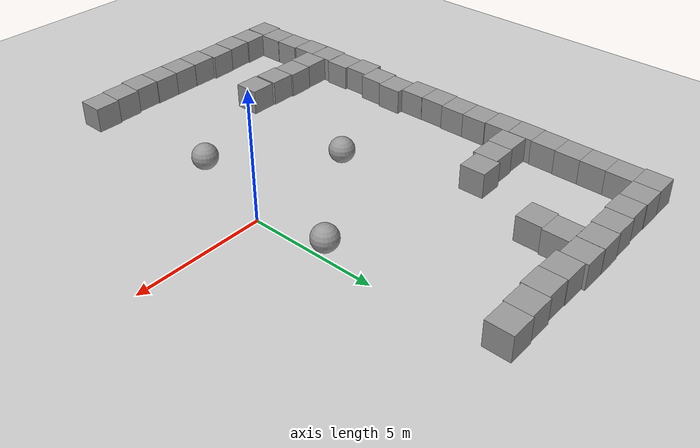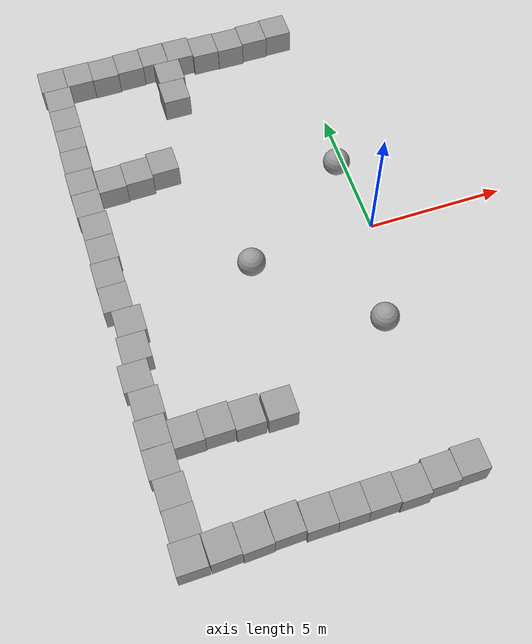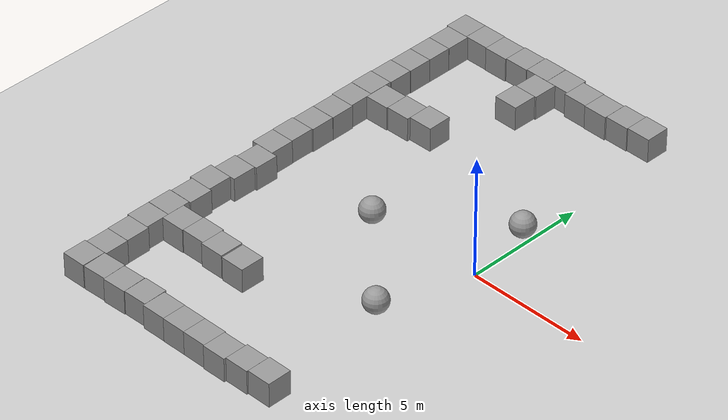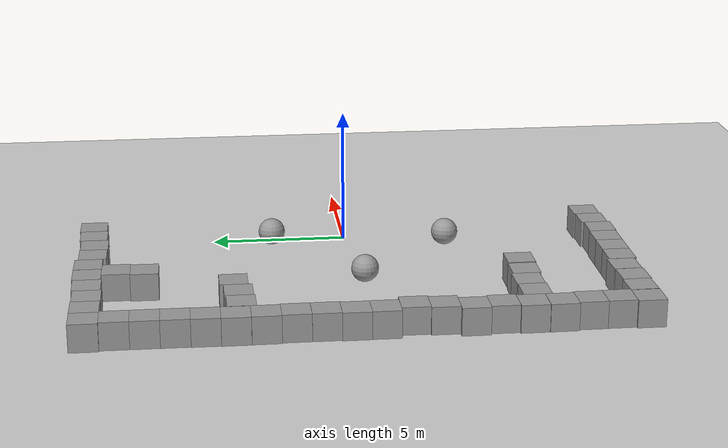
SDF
<sdf version="1.7">
 <world name="default">
  <model name="ground_plane">
   <static>1</static>
   <link name="link">
    <collision name="collision">
     <geometry><plane><normal>0 0 1</normal><size>100 100</size></plane></geometry>
     <surface>
      <contact><collide_bitmask>65535</collide_bitmask></contact>
      <friction><ode><mu>100</mu><mu2>50</mu2></ode></friction>
     </surface>
    </collision>
    <visual name="visual">
     <cast_shadows>0</cast_shadows>
     <geometry><plane><normal>0 0 1</normal><size>100 100</size></plane></geometry>
     <material>
      <script><uri>file://media/materials/scripts/gazebo.material</uri><name>Gazebo/Grey</name></script>
     </material>
    </visual>
   </link>
  </model>
  <model name="unit_box">
   <pose>-9.50899 1.49304 0.5 0 -0 0.005509</pose>
   <link name="link">
    <inertial>
     <mass>1</mass>
     <inertia>
      <ixx>0.166667</ixx>
      <ixy>0</ixy>
      <ixz>0</ixz>
      <iyy>0.166667</iyy>
      <iyz>0</iyz>
      <izz>0.166667</izz>
     </inertia>
    </inertial>
    <collision name="collision"><geometry><box><size>1 1 1</size></box></geometry></collision>
    <visual name="visual">
     <geometry><box><size>1 1 1</size></box></geometry>
     <material>
      <script><name>Gazebo/Grey</name><uri>file://media/materials/scripts/gazebo.material</uri></script>
     </material>
    </visual>
   </link>
  </model>
  <model name="unit_box_0">
   <pose>-9.50952 2.49358 0.5 0 -0 0.006554</pose>
   <link name="link">
    <inertial>
     <mass>1</mass>
     <inertia>
      <ixx>0.166667</ixx>
      <ixy>0</ixy>
      <ixz>0</ixz>
      <iyy>0.166667</iyy>
      <iyz>0</iyz>
      <izz>0.166667</izz>
     </inertia>
    </inertial>
    <collision name="collision"><geometry><box><size>1 1 1</size></box></geometry></collision>
    <visual name="visual">
     <geometry><box><size>1 1 1</size></box></geometry>
     <material>
      <script><name>Gazebo/Grey</name><uri>file://media/materials/scripts/gazebo.material</uri></script>
     </material>
    </visual>
   </link>
  </model>
  <model name="unit_box_1">
   <pose>-9.56127 3.49327 0.5 0 -0 0.006556</pose>
   <link name="link">
    <inertial>
     <mass>1</mass>
     <inertia>
      <ixx>0.166667</ixx>
      <ixy>0</ixy>
      <ixz>0</ixz>
      <iyy>0.166667</iyy>
      <iyz>0</iyz>
      <izz>0.166667</izz>
     </inertia>
    </inertial>
    <collision name="collision"><geometry><box><size>1 1 1</size></box></geometry></collision>
    <visual name="visual">
     <geometry><box><size>1 1 1</size></box></geometry>
     <material>
      <script><name>Gazebo/Grey</name><uri>file://media/materials/scripts/gazebo.material</uri></script>
     </material>
    </visual>
   </link>
  </model>
  <model name="unit_box_2">
   <pose>-9.58035 4.49539 0.5 0 -0 0.002115</pose>
   <link name="link">
    <inertial>
     <mass>1</mass>
     <inertia>
      <ixx>0.166667</ixx>
      <ixy>0</ixy>
      <ixz>0</ixz>
      <iyy>0.166667</iyy>
      <iyz>0</iyz>
      <izz>0.166667</izz>
     </inertia>
    </inertial>
    <collision name="collision"><geometry><box><size>1 1 1</size></box></geometry></collision>
    <visual name="visual">
     <geometry><box><size>1 1 1</size></box></geometry>
     <material>
      <script><name>Gazebo/Grey</name><uri>file://media/materials/scripts/gazebo.material</uri></script>
     </material>
    </visual>
   </link>
  </model>
  <model name="unit_box_3">
   <pose>-9.55835 5.49548 0.499995 0 -1e-05 0.002039</pose>
   <link name="link">
    <inertial>
     <mass>1</mass>
     <inertia>
      <ixx>0.166667</ixx>
      <ixy>0</ixy>
      <ixz>0</ixz>
      <iyy>0.166667</iyy>
      <iyz>0</iyz>
      <izz>0.166667</izz>
     </inertia>
    </inertial>
    <collision name="collision"><geometry><box><size>1 1 1</size></box></geometry></collision>
    <visual name="visual">
     <geometry><box><size>1 1 1</size></box></geometry>
     <material>
      <script><name>Gazebo/Grey</name><uri>file://media/materials/scripts/gazebo.material</uri></script>
     </material>
    </visual>
   </link>
  </model>
  <model name="unit_box_4">
   <pose>-9.54098 6.49552 0.499995 -0 1e-05 0.002039</pose>
   <link name="link">
    <inertial>
     <mass>1</mass>
     <inertia>
      <ixx>0.166667</ixx>
      <ixy>0</ixy>
      <ixz>0</ixz>
      <iyy>0.166667</iyy>
      <iyz>0</iyz>
      <izz>0.166667</izz>
     </inertia>
    </inertial>
    <collision name="collision"><geometry><box><size>1 1 1</size></box></geometry></collision>
    <visual name="visual">
     <geometry><box><size>1 1 1</size></box></geometry>
     <material>
      <script><name>Gazebo/Grey</name><uri>file://media/materials/scripts/gazebo.material</uri></script>
     </material>
    </visual>
   </link>
  </model>
  <model name="unit_box_5">
   <pose>-9.54005 7.49553 0.499995 0 1e-05 0.00203</pose>
   <link name="link">
    <inertial>
     <mass>1</mass>
     <inertia>
      <ixx>0.166667</ixx>
      <ixy>0</ixy>
      <ixz>0</ixz>
      <iyy>0.166667</iyy>
      <iyz>0</iyz>
      <izz>0.166667</izz>
     </inertia>
    </inertial>
    <collision name="collision"><geometry><box><size>1 1 1</size></box></geometry></collision>
    <visual name="visual">
     <geometry><box><size>1 1 1</size></box></geometry>
     <material>
      <script><name>Gazebo/Grey</name><uri>file://media/materials/scripts/gazebo.material</uri></script>
     </material>
    </visual>
   </link>
  </model>
  <model name="unit_box_6">
   <pose>-9.53865 8.49559 0.5 0 -0 0.001917</pose>
   <link name="link">
    <inertial>
     <mass>1</mass>
     <inertia>
      <ixx>0.166667</ixx>
      <ixy>0</ixy>
      <ixz>0</ixz>
      <iyy>0.166667</iyy>
      <iyz>0</iyz>
      <izz>0.166667</izz>
     </inertia>
    </inertial>
    <collision name="collision"><geometry><box><size>1 1 1</size></box></geometry></collision>
    <visual name="visual">
     <geometry><box><size>1 1 1</size></box></geometry>
     <material>
      <script><name>Gazebo/Grey</name><uri>file://media/materials/scripts/gazebo.material</uri></script>
     </material>
    </visual>
   </link>
  </model>
  <model name="unit_box_7">
   <pose>-9.61453 9.49573 0.499995 -0 -1e-05 0.001346</pose>
   <link name="link">
    <inertial>
     <mass>1</mass>
     <inertia>
      <ixx>0.166667</ixx>
      <ixy>0</ixy>
      <ixz>0</ixz>
      <iyy>0.166667</iyy>
      <iyz>0</iyz>
      <izz>0.166667</izz>
     </inertia>
    </inertial>
    <collision name="collision"><geometry><box><size>1 1 1</size></box></geometry></collision>
    <visual name="visual">
     <geometry><box><size>1 1 1</size></box></geometry>
     <material>
      <script><name>Gazebo/Grey</name><uri>file://media/materials/scripts/gazebo.material</uri></script>
     </material>
    </visual>
   </link>
  </model>
  <model name="unit_box_8">
   <pose>-8.61421 9.49686 0.499995 -1e-05 -0 0.00071</pose>
   <link name="link">
    <inertial>
     <mass>1</mass>
     <inertia>
      <ixx>0.166667</ixx>
      <ixy>0</ixy>
      <ixz>0</ixz>
      <iyy>0.166667</iyy>
      <iyz>0</iyz>
      <izz>0.166667</izz>
     </inertia>
    </inertial>
    <collision name="collision"><geometry><box><size>1 1 1</size></box></geometry></collision>
    <visual name="visual">
     <geometry><box><size>1 1 1</size></box></geometry>
     <material>
      <script><name>Gazebo/Grey</name><uri>file://media/materials/scripts/gazebo.material</uri></script>
     </material>
    </visual>
   </link>
  </model>
  <model name="unit_box_9">
   <pose>-7.61401 9.4805 0.5 0 -0 0.001055</pose>
   <link name="link">
    <inertial>
     <mass>1</mass>
     <inertia>
      <ixx>0.166667</ixx>
      <ixy>0</ixy>
      <ixz>0</ixz>
      <iyy>0.166667</iyy>
      <iyz>0</iyz>
      <izz>0.166667</izz>
     </inertia>
    </inertial>
    <collision name="collision"><geometry><box><size>1 1 1</size></box></geometry></collision>
    <visual name="visual">
     <geometry><box><size>1 1 1</size></box></geometry>
     <material>
      <script><name>Gazebo/Grey</name><uri>file://media/materials/scripts/gazebo.material</uri></script>
     </material>
    </visual>
   </link>
  </model>
  <model name="unit_box_10">
   <pose>-6.61379 9.52635 0.499995 -1e-05 -0 0.001648</pose>
   <link name="link">
    <inertial>
     <mass>1</mass>
     <inertia>
      <ixx>0.166667</ixx>
      <ixy>0</ixy>
      <ixz>0</ixz>
      <iyy>0.166667</iyy>
      <iyz>0</iyz>
      <izz>0.166667</izz>
     </inertia>
    </inertial>
    <collision name="collision"><geometry><box><size>1 1 1</size></box></geometry></collision>
    <visual name="visual">
     <geometry><box><size>1 1 1</size></box></geometry>
     <material>
      <script><name>Gazebo/Grey</name><uri>file://media/materials/scripts/gazebo.material</uri></script>
     </material>
    </visual>
   </link>
  </model>
  <model name="unit_box_11">
   <pose>-5.6125 9.56164 0.499995 0 -1e-05 0.001868</pose>
   <link name="link">
    <inertial>
     <mass>1</mass>
     <inertia>
      <ixx>0.166667</ixx>
      <ixy>0</ixy>
      <ixz>0</ixz>
      <iyy>0.166667</iyy>
      <iyz>0</iyz>
      <izz>0.166667</izz>
     </inertia>
    </inertial>
    <collision name="collision"><geometry><box><size>1 1 1</size></box></geometry></collision>
    <visual name="visual">
     <geometry><box><size>1 1 1</size></box></geometry>
     <material>
      <script><name>Gazebo/Grey</name><uri>file://media/materials/scripts/gazebo.material</uri></script>
     </material>
    </visual>
   </link>
  </model>
  <model name="unit_box_12">
   <pose>-4.60885 9.55498 0.499995 -0 1e-05 -0.005478</pose>
   <link name="link">
    <inertial>
     <mass>1</mass>
     <inertia>
      <ixx>0.166667</ixx>
      <ixy>0</ixy>
      <ixz>0</ixz>
      <iyy>0.166667</iyy>
      <iyz>0</iyz>
      <izz>0.166667</izz>
     </inertia>
    </inertial>
    <collision name="collision"><geometry><box><size>1 1 1</size></box></geometry></collision>
    <visual name="visual">
     <geometry><box><size>1 1 1</size></box></geometry>
     <material>
      <script><name>Gazebo/Grey</name><uri>file://media/materials/scripts/gazebo.material</uri></script>
     </material>
    </visual>
   </link>
  </model>
  <model name="unit_box_13">
   <pose>-3.60929 9.43516 0.499995 -0 1e-05 -0.005322</pose>
   <link name="link">
    <inertial>
     <mass>1</mass>
     <inertia>
      <ixx>0.166667</ixx>
      <ixy>0</ixy>
      <ixz>0</ixz>
      <iyy>0.166667</iyy>
      <iyz>0</iyz>
      <izz>0.166667</izz>
     </inertia>
    </inertial>
    <collision name="collision"><geometry><box><size>1 1 1</size></box></geometry></collision>
    <visual name="visual">
     <geometry><box><size>1 1 1</size></box></geometry>
     <material>
      <script><name>Gazebo/Grey</name><uri>file://media/materials/scripts/gazebo.material</uri></script>
     </material>
    </visual>
   </link>
  </model>
  <model name="unit_box_14">
   <pose>-2.60927 9.41078 0.499995 -1e-05 -0 -0.005189</pose>
   <link name="link">
    <inertial>
     <mass>1</mass>
     <inertia>
      <ixx>0.166667</ixx>
      <ixy>0</ixy>
      <ixz>0</ixz>
      <iyy>0.166667</iyy>
      <iyz>0</iyz>
      <izz>0.166667</izz>
     </inertia>
    </inertial>
    <collision name="collision"><geometry><box><size>1 1 1</size></box></geometry></collision>
    <visual name="visual">
     <geometry><box><size>1 1 1</size></box></geometry>
     <material>
      <script><name>Gazebo/Grey</name><uri>file://media/materials/scripts/gazebo.material</uri></script>
     </material>
    </visual>
   </link>
  </model>
  <model name="unit_box_15">
   <pose>-1.60787 9.47219 0.499995 1e-05 -0 -0.002718</pose>
   <link name="link">
    <inertial>
     <mass>1</mass>
     <inertia>
      <ixx>0.166667</ixx>
      <ixy>0</ixy>
      <ixz>0</ixz>
      <iyy>0.166667</iyy>
      <iyz>0</iyz>
      <izz>0.166667</izz>
     </inertia>
    </inertial>
    <collision name="collision"><geometry><box><size>1 1 1</size></box></geometry></collision>
    <visual name="visual">
     <geometry><box><size>1 1 1</size></box></geometry>
     <material>
      <script><name>Gazebo/Grey</name><uri>file://media/materials/scripts/gazebo.material</uri></script>
     </material>
    </visual>
   </link>
  </model>
  <model name="unit_box_16">
   <pose>-0.607715 9.5092 0.499995 1e-05 -0 -0.002661</pose>
   <link name="link">
    <inertial>
     <mass>1</mass>
     <inertia>
      <ixx>0.166667</ixx>
      <ixy>0</ixy>
      <ixz>0</ixz>
      <iyy>0.166667</iyy>
      <iyz>0</iyz>
      <izz>0.166667</izz>
     </inertia>
    </inertial>
    <collision name="collision"><geometry><box><size>1 1 1</size></box></geometry></collision>
    <visual name="visual">
     <geometry><box><size>1 1 1</size></box></geometry>
     <material>
      <script><name>Gazebo/Grey</name><uri>file://media/materials/scripts/gazebo.material</uri></script>
     </material>
    </visual>
   </link>
  </model>
  <model name="unit_box_55">
   <pose>-0.4537 -9.37407 0.499995 0 1e-05 0.004387</pose>
   <link name="link">
    <inertial>
     <mass>1</mass>
     <inertia>
      <ixx>0.166667</ixx>
      <ixy>0</ixy>
      <ixz>0</ixz>
      <iyy>0.166667</iyy>
      <iyz>0</iyz>
      <izz>0.166667</izz>
     </inertia>
    </inertial>
    <collision name="collision"><geometry><box><size>1 1 1</size></box></geometry></collision>
    <visual name="visual">
     <geometry><box><size>1 1 1</size></box></geometry>
     <material>
      <script><name>Gazebo/Grey</name><uri>file://media/materials/scripts/gazebo.material</uri></script>
     </material>
    </visual>
   </link>
  </model>
  <model name="unit_box_56">
   <pose>-1.45415 -9.43952 0.5 0 -0 0.006013</pose>
   <link name="link">
    <inertial>
     <mass>1</mass>
     <inertia>
      <ixx>0.166667</ixx>
      <ixy>0</ixy>
      <ixz>0</ixz>
      <iyy>0.166667</iyy>
      <iyz>0</iyz>
      <izz>0.166667</izz>
     </inertia>
    </inertial>
    <collision name="collision"><geometry><box><size>1 1 1</size></box></geometry></collision>
    <visual name="visual">
     <geometry><box><size>1 1 1</size></box></geometry>
     <material>
      <script><name>Gazebo/Grey</name><uri>file://media/materials/scripts/gazebo.material</uri></script>
     </material>
    </visual>
   </link>
  </model>
  <model name="unit_box_57">
   <pose>-2.45363 -9.53583 0.499995 -0 1e-05 0.006138</pose>
   <link name="link">
    <inertial>
     <mass>1</mass>
     <inertia>
      <ixx>0.166667</ixx>
      <ixy>0</ixy>
      <ixz>0</ixz>
      <iyy>0.166667</iyy>
      <iyz>0</iyz>
      <izz>0.166667</izz>
     </inertia>
    </inertial>
    <collision name="collision"><geometry><box><size>1 1 1</size></box></geometry></collision>
    <visual name="visual">
     <geometry><box><size>1 1 1</size></box></geometry>
     <material>
      <script><name>Gazebo/Grey</name><uri>file://media/materials/scripts/gazebo.material</uri></script>
     </material>
    </visual>
   </link>
  </model>
  <model name="unit_box_58">
   <pose>-3.45385 -9.50877 0.499995 1e-05 -0 0.006199</pose>
   <link name="link">
    <inertial>
     <mass>1</mass>
     <inertia>
      <ixx>0.166667</ixx>
      <ixy>0</ixy>
      <ixz>0</ixz>
      <iyy>0.166667</iyy>
      <iyz>0</iyz>
      <izz>0.166667</izz>
     </inertia>
    </inertial>
    <collision name="collision"><geometry><box><size>1 1 1</size></box></geometry></collision>
    <visual name="visual">
     <geometry><box><size>1 1 1</size></box></geometry>
     <material>
      <script><name>Gazebo/Grey</name><uri>file://media/materials/scripts/gazebo.material</uri></script>
     </material>
    </visual>
   </link>
  </model>
  <model name="unit_box_59">
   <pose>-4.45387 -9.51182 0.499995 1e-05 -0 0.006219</pose>
   <link name="link">
    <inertial>
     <mass>1</mass>
     <inertia>
      <ixx>0.166667</ixx>
      <ixy>0</ixy>
      <ixz>0</ixz>
      <iyy>0.166667</iyy>
      <iyz>0</iyz>
      <izz>0.166667</izz>
     </inertia>
    </inertial>
    <collision name="collision"><geometry><box><size>1 1 1</size></box></geometry></collision>
    <visual name="visual">
     <geometry><box><size>1 1 1</size></box></geometry>
     <material>
      <script><name>Gazebo/Grey</name><uri>file://media/materials/scripts/gazebo.material</uri></script>
     </material>
    </visual>
   </link>
  </model>
  <model name="unit_box_60">
   <pose>-5.45396 -9.51167 0.5 0 -0 0.006359</pose>
   <link name="link">
    <inertial>
     <mass>1</mass>
     <inertia>
      <ixx>0.166667</ixx>
      <ixy>0</ixy>
      <ixz>0</ixz>
      <iyy>0.166667</iyy>
      <iyz>0</iyz>
      <izz>0.166667</izz>
     </inertia>
    </inertial>
    <collision name="collision"><geometry><box><size>1 1 1</size></box></geometry></collision>
    <visual name="visual">
     <geometry><box><size>1 1 1</size></box></geometry>
     <material>
      <script><name>Gazebo/Grey</name><uri>file://media/materials/scripts/gazebo.material</uri></script>
     </material>
    </visual>
   </link>
  </model>
  <model name="unit_box_61">
   <pose>-6.46219 -9.44079 0.499995 0 1e-05 0.021993</pose>
   <link name="link">
    <inertial>
     <mass>1</mass>
     <inertia>
      <ixx>0.166667</ixx>
      <ixy>0</ixy>
      <ixz>0</ixz>
      <iyy>0.166667</iyy>
      <iyz>0</iyz>
      <izz>0.166667</izz>
     </inertia>
    </inertial>
    <collision name="collision"><geometry><box><size>1 1 1</size></box></geometry></collision>
    <visual name="visual">
     <geometry><box><size>1 1 1</size></box></geometry>
     <material>
      <script><name>Gazebo/Grey</name><uri>file://media/materials/scripts/gazebo.material</uri></script>
     </material>
    </visual>
   </link>
  </model>
  <model name="unit_box_62">
   <pose>-7.4684 -9.49713 0.5 0 -0 0.037312</pose>
   <link name="link">
    <inertial>
     <mass>1</mass>
     <inertia>
      <ixx>0.166667</ixx>
      <ixy>0</ixy>
      <ixz>0</ixz>
      <iyy>0.166667</iyy>
      <iyz>0</iyz>
      <izz>0.166667</izz>
     </inertia>
    </inertial>
    <collision name="collision"><geometry><box><size>1 1 1</size></box></geometry></collision>
    <visual name="visual">
     <geometry><box><size>1 1 1</size></box></geometry>
     <material>
      <script><name>Gazebo/Grey</name><uri>file://media/materials/scripts/gazebo.material</uri></script>
     </material>
    </visual>
   </link>
  </model>
  <model name="unit_box_63">
   <pose>-8.47101 -9.49574 0.499995 1e-05 -0 0.041038</pose>
   <link name="link">
    <inertial>
     <mass>1</mass>
     <inertia>
      <ixx>0.166667</ixx>
      <ixy>0</ixy>
      <ixz>0</ixz>
      <iyy>0.166667</iyy>
      <iyz>0</iyz>
      <izz>0.166667</izz>
     </inertia>
    </inertial>
    <collision name="collision"><geometry><box><size>1 1 1</size></box></geometry></collision>
    <visual name="visual">
     <geometry><box><size>1 1 1</size></box></geometry>
     <material>
      <script><name>Gazebo/Grey</name><uri>file://media/materials/scripts/gazebo.material</uri></script>
     </material>
    </visual>
   </link>
  </model>
  <model name="unit_box_64">
   <pose>-9.49165 -9.51851 0.499995 -0 1e-05 0.006772</pose>
   <link name="link">
    <inertial>
     <mass>1</mass>
     <inertia>
      <ixx>0.166667</ixx>
      <ixy>0</ixy>
      <ixz>0</ixz>
      <iyy>0.166667</iyy>
      <iyz>0</iyz>
      <izz>0.166667</izz>
     </inertia>
    </inertial>
    <collision name="collision"><geometry><box><size>1 1 1</size></box></geometry></collision>
    <visual name="visual">
     <geometry><box><size>1 1 1</size></box></geometry>
     <material>
      <script><name>Gazebo/Grey</name><uri>file://media/materials/scripts/gazebo.material</uri></script>
     </material>
    </visual>
   </link>
  </model>
  <model name="unit_box_65">
   <pose>-9.41874 -8.51666 0.499995 0 1e-05 0.009432</pose>
   <link name="link">
    <inertial>
     <mass>1</mass>
     <inertia>
      <ixx>0.166667</ixx>
      <ixy>0</ixy>
      <ixz>0</ixz>
      <iyy>0.166667</iyy>
      <iyz>0</iyz>
      <izz>0.166667</izz>
     </inertia>
    </inertial>
    <collision name="collision"><geometry><box><size>1 1 1</size></box></geometry></collision>
    <visual name="visual">
     <geometry><box><size>1 1 1</size></box></geometry>
     <material>
      <script><name>Gazebo/Grey</name><uri>file://media/materials/scripts/gazebo.material</uri></script>
     </material>
    </visual>
   </link>
  </model>
  <model name="unit_box_66">
   <pose>-9.44196 -7.51561 0.499995 1e-05 -0 0.011931</pose>
   <link name="link">
    <inertial>
     <mass>1</mass>
     <inertia>
      <ixx>0.166667</ixx>
      <ixy>0</ixy>
      <ixz>0</ixz>
      <iyy>0.166667</iyy>
      <iyz>0</iyz>
      <izz>0.166667</izz>
     </inertia>
    </inertial>
    <collision name="collision"><geometry><box><size>1 1 1</size></box></geometry></collision>
    <visual name="visual">
     <geometry><box><size>1 1 1</size></box></geometry>
     <material>
      <script><name>Gazebo/Grey</name><uri>file://media/materials/scripts/gazebo.material</uri></script>
     </material>
    </visual>
   </link>
  </model>
  <model name="unit_box_67">
   <pose>-9.52423 -6.5165 0.499995 -1e-05 -0 0.011924</pose>
   <link name="link">
    <inertial>
     <mass>1</mass>
     <inertia>
      <ixx>0.166667</ixx>
      <ixy>0</ixy>
      <ixz>0</ixz>
      <iyy>0.166667</iyy>
      <iyz>0</iyz>
      <izz>0.166667</izz>
     </inertia>
    </inertial>
    <collision name="collision"><geometry><box><size>1 1 1</size></box></geometry></collision>
    <visual name="visual">
     <geometry><box><size>1 1 1</size></box></geometry>
     <material>
      <script><name>Gazebo/Grey</name><uri>file://media/materials/scripts/gazebo.material</uri></script>
     </material>
    </visual>
   </link>
  </model>
  <model name="unit_box_68">
   <pose>-9.53125 -5.51247 0.5 0 -0 0.003814</pose>
   <link name="link">
    <inertial>
     <mass>1</mass>
     <inertia>
      <ixx>0.166667</ixx>
      <ixy>0</ixy>
      <ixz>0</ixz>
      <iyy>0.166667</iyy>
      <iyz>0</iyz>
      <izz>0.166667</izz>
     </inertia>
    </inertial>
    <collision name="collision"><geometry><box><size>1 1 1</size></box></geometry></collision>
    <visual name="visual">
     <geometry><box><size>1 1 1</size></box></geometry>
     <material>
      <script><name>Gazebo/Grey</name><uri>file://media/materials/scripts/gazebo.material</uri></script>
     </material>
    </visual>
   </link>
  </model>
  <model name="unit_box_69">
   <pose>-9.4659 -4.50979 0.5 0 -0 -0.001785</pose>
   <link name="link">
    <inertial>
     <mass>1</mass>
     <inertia>
      <ixx>0.166667</ixx>
      <ixy>0</ixy>
      <ixz>0</ixz>
      <iyy>0.166667</iyy>
      <iyz>0</iyz>
      <izz>0.166667</izz>
     </inertia>
    </inertial>
    <collision name="collision"><geometry><box><size>1 1 1</size></box></geometry></collision>
    <visual name="visual">
     <geometry><box><size>1 1 1</size></box></geometry>
     <material>
      <script><name>Gazebo/Grey</name><uri>file://media/materials/scripts/gazebo.material</uri></script>
     </material>
    </visual>
   </link>
  </model>
  <model name="unit_box_70">
   <pose>-9.56589 -3.5096 0.499995 -9e-06 -0 -0.001792</pose>
   <link name="link">
    <inertial>
     <mass>1</mass>
     <inertia>
      <ixx>0.166667</ixx>
      <ixy>0</ixy>
      <ixz>0</ixz>
      <iyy>0.166667</iyy>
      <iyz>0</iyz>
      <izz>0.166667</izz>
     </inertia>
    </inertial>
    <collision name="collision"><geometry><box><size>1 1 1</size></box></geometry></collision>
    <visual name="visual">
     <geometry><box><size>1 1 1</size></box></geometry>
     <material>
      <script><name>Gazebo/Grey</name><uri>file://media/materials/scripts/gazebo.material</uri></script>
     </material>
    </visual>
   </link>
  </model>
  <model name="unit_box_71">
   <pose>-9.36822 -2.50993 0.5 0 -0 -0.001874</pose>
   <link name="link">
    <inertial>
     <mass>1</mass>
     <inertia>
      <ixx>0.166667</ixx>
      <ixy>0</ixy>
      <ixz>0</ixz>
      <iyy>0.166667</iyy>
      <iyz>0</iyz>
      <izz>0.166667</izz>
     </inertia>
    </inertial>
    <collision name="collision"><geometry><box><size>1 1 1</size></box></geometry></collision>
    <visual name="visual">
     <geometry><box><size>1 1 1</size></box></geometry>
     <material>
      <script><name>Gazebo/Grey</name><uri>file://media/materials/scripts/gazebo.material</uri></script>
     </material>
    </visual>
   </link>
  </model>
  <model name="unit_box_72">
   <pose>-9.54696 0.491595 0.499995 0 -1e-05 0.002833</pose>
   <link name="link">
    <inertial>
     <mass>1</mass>
     <inertia>
      <ixx>0.166667</ixx>
      <ixy>0</ixy>
      <ixz>0</ixz>
      <iyy>0.166667</iyy>
      <iyz>0</iyz>
      <izz>0.166667</izz>
     </inertia>
    </inertial>
    <collision name="collision"><geometry><box><size>1 1 1</size></box></geometry></collision>
    <visual name="visual">
     <geometry><box><size>1 1 1</size></box></geometry>
     <material>
      <script><name>Gazebo/Grey</name><uri>file://media/materials/scripts/gazebo.material</uri></script>
     </material>
    </visual>
   </link>
  </model>
  <model name="unit_box_73">
   <pose>-9.53077 -0.508401 0.5 0 -0 0.002767</pose>
   <link name="link">
    <inertial>
     <mass>1</mass>
     <inertia>
      <ixx>0.166667</ixx>
      <ixy>0</ixy>
      <ixz>0</ixz>
      <iyy>0.166667</iyy>
      <iyz>0</iyz>
      <izz>0.166667</izz>
     </inertia>
    </inertial>
    <collision name="collision"><geometry><box><size>1 1 1</size></box></geometry></collision>
    <visual name="visual">
     <geometry><box><size>1 1 1</size></box></geometry>
     <material>
      <script><name>Gazebo/Grey</name><uri>file://media/materials/scripts/gazebo.material</uri></script>
     </material>
    </visual>
   </link>
  </model>
  <model name="unit_box_74">
   <pose>-9.28789 -1.51004 0.5 -0 -0 -0.001859</pose>
   <link name="link">
    <inertial>
     <mass>1</mass>
     <inertia>
      <ixx>0.166667</ixx>
      <ixy>0</ixy>
      <ixz>0</ixz>
      <iyy>0.166667</iyy>
      <iyz>0</iyz>
      <izz>0.166667</izz>
     </inertia>
    </inertial>
    <collision name="collision"><geometry><box><size>1 1 1</size></box></geometry></collision>
    <visual name="visual">
     <geometry><box><size>1 1 1</size></box></geometry>
     <material>
      <script><name>Gazebo/Grey</name><uri>file://media/materials/scripts/gazebo.material</uri></script>
     </material>
    </visual>
   </link>
  </model>
  <model name="unit_box_85">
   <pose>-8.52955 -5.77878 0.499995 -1e-05 0 0.00516</pose>
   <link name="link">
    <inertial>
     <mass>1</mass>
     <inertia>
      <ixx>0.166667</ixx>
      <ixy>0</ixy>
      <ixz>0</ixz>
      <iyy>0.166667</iyy>
      <iyz>0</iyz>
      <izz>0.166667</izz>
     </inertia>
    </inertial>
    <collision name="collision"><geometry><box><size>1 1 1</size></box></geometry></collision>
    <visual name="visual">
     <geometry><box><size>1 1 1</size></box></geometry>
     <material>
      <script><name>Gazebo/Grey</name><uri>file://media/materials/scripts/gazebo.material</uri></script>
     </material>
    </visual>
   </link>
  </model>
  <model name="unit_box_86">
   <pose>-7.52969 -5.74729 0.499998 0 -5e-06 0.005195</pose>
   <link name="link">
    <inertial>
     <mass>1</mass>
     <inertia>
      <ixx>0.166667</ixx>
      <ixy>0</ixy>
      <ixz>0</ixz>
      <iyy>0.166667</iyy>
      <iyz>0</iyz>
      <izz>0.166667</izz>
     </inertia>
    </inertial>
    <collision name="collision"><geometry><box><size>1 1 1</size></box></geometry></collision>
    <visual name="visual">
     <geometry><box><size>1 1 1</size></box></geometry>
     <material>
      <script><name>Gazebo/Grey</name><uri>file://media/materials/scripts/gazebo.material</uri></script>
     </material>
    </visual>
   </link>
  </model>
  <model name="unit_box_87">
   <pose>-6.52934 -5.80877 0.5 0 -0 0.005202</pose>
   <link name="link">
    <inertial>
     <mass>1</mass>
     <inertia>
      <ixx>0.166667</ixx>
      <ixy>0</ixy>
      <ixz>0</ixz>
      <iyy>0.166667</iyy>
      <iyz>0</iyz>
      <izz>0.166667</izz>
     </inertia>
    </inertial>
    <collision name="collision"><geometry><box><size>1 1 1</size></box></geometry></collision>
    <visual name="visual">
     <geometry><box><size>1 1 1</size></box></geometry>
     <material>
      <script><name>Gazebo/Grey</name><uri>file://media/materials/scripts/gazebo.material</uri></script>
     </material>
    </visual>
   </link>
  </model>
  <model name="unit_box_88">
   <pose>-5.46403 -5.84123 0.499995 0 1e-05 0</pose>
   <link name="link">
    <inertial>
     <mass>1</mass>
     <inertia>
      <ixx>0.166667</ixx>
      <ixy>0</ixy>
      <ixz>0</ixz>
      <iyy>0.166667</iyy>
      <iyz>0</iyz>
      <izz>0.166667</izz>
     </inertia>
    </inertial>
    <collision name="collision"><geometry><box><size>1 1 1</size></box></geometry></collision>
    <visual name="visual">
     <geometry><box><size>1 1 1</size></box></geometry>
     <material>
      <script><name>Gazebo/Grey</name><uri>file://media/materials/scripts/gazebo.material</uri></script>
     </material>
    </visual>
   </link>
  </model>
  <model name="unit_box_89">
   <pose>-5.20551 8.5572 0.499995 0 1e-05 -0.008356</pose>
   <link name="link">
    <inertial>
     <mass>1</mass>
     <inertia>
      <ixx>0.166667</ixx>
      <ixy>0</ixy>
      <ixz>0</ixz>
      <iyy>0.166667</iyy>
      <iyz>0</iyz>
      <izz>0.166667</izz>
     </inertia>
    </inertial>
    <collision name="collision"><geometry><box><size>1 1 1</size></box></geometry></collision>
    <visual name="visual">
     <geometry><box><size>1 1 1</size></box></geometry>
     <material>
      <script><name>Gazebo/Grey</name><uri>file://media/materials/scripts/gazebo.material</uri></script>
     </material>
    </visual>
   </link>
  </model>
  <model name="unit_box_90">
   <pose>-5.27841 7.55774 0.499995 1e-05 -0 -0.008383</pose>
   <link name="link">
    <inertial>
     <mass>1</mass>
     <inertia>
      <ixx>0.166667</ixx>
      <ixy>0</ixy>
      <ixz>0</ixz>
      <iyy>0.166667</iyy>
      <iyz>0</iyz>
      <izz>0.166667</izz>
     </inertia>
    </inertial>
    <collision name="collision"><geometry><box><size>1 1 1</size></box></geometry></collision>
    <visual name="visual">
     <geometry><box><size>1 1 1</size></box></geometry>
     <material>
      <script><name>Gazebo/Grey</name><uri>file://media/materials/scripts/gazebo.material</uri></script>
     </material>
    </visual>
   </link>
  </model>
  <model name="unit_box_91">
   <pose>-8.56759 4.27492 0.499995 0 -1e-05 0.011104</pose>
   <link name="link">
    <inertial>
     <mass>1</mass>
     <inertia>
      <ixx>0.166667</ixx>
      <ixy>0</ixy>
      <ixz>0</ixz>
      <iyy>0.166667</iyy>
      <iyz>0</iyz>
      <izz>0.166667</izz>
     </inertia>
    </inertial>
    <collision name="collision"><geometry><box><size>1 1 1</size></box></geometry></collision>
    <visual name="visual">
     <geometry><box><size>1 1 1</size></box></geometry>
     <material>
      <script><name>Gazebo/Grey</name><uri>file://media/materials/scripts/gazebo.material</uri></script>
     </material>
    </visual>
   </link>
  </model>
  <model name="unit_box_92">
   <pose>-7.5681 4.32859 0.499995 -1e-05 0 0.011103</pose>
   <link name="link">
    <inertial>
     <mass>1</mass>
     <inertia>
      <ixx>0.166667</ixx>
      <ixy>0</ixy>
      <ixz>0</ixz>
      <iyy>0.166667</iyy>
      <iyz>0</iyz>
      <izz>0.166667</izz>
     </inertia>
    </inertial>
    <collision name="collision"><geometry><box><size>1 1 1</size></box></geometry></collision>
    <visual name="visual">
     <geometry><box><size>1 1 1</size></box></geometry>
     <material>
      <script><name>Gazebo/Grey</name><uri>file://media/materials/scripts/gazebo.material</uri></script>
     </material>
    </visual>
   </link>
  </model>
  <model name="unit_box_93">
   <pose>-6.56961 4.47029 0.499995 -0 1e-05 0.011105</pose>
   <link name="link">
    <inertial>
     <mass>1</mass>
     <inertia>
      <ixx>0.166667</ixx>
      <ixy>0</ixy>
      <ixz>0</ixz>
      <iyy>0.166667</iyy>
      <iyz>0</iyz>
      <izz>0.166667</izz>
     </inertia>
    </inertial>
    <collision name="collision"><geometry><box><size>1 1 1</size></box></geometry></collision>
    <visual name="visual">
     <geometry><box><size>1 1 1</size></box></geometry>
     <material>
      <script><name>Gazebo/Grey</name><uri>file://media/materials/scripts/gazebo.material</uri></script>
     </material>
    </visual>
   </link>
  </model>
  <model name="unit_sphere">
   <pose>-0.365991 2.79332 0.5 0 -0 0</pose>
   <link name="link">
    <inertial>
     <mass>1</mass>
     <inertia><ixx>0.1</ixx><ixy>0</ixy><ixz>0</ixz><iyy>0.1</iyy><iyz>0</iyz><izz>0.1</izz></inertia>
    </inertial>
    <collision name="collision"><geometry><sphere><radius>0.5</radius></sphere></geometry></collision>
    <visual name="visual">
     <geometry><sphere><radius>0.5</radius></sphere></geometry>
     <material>
      <script><name>Gazebo/Grey</name><uri>file://media/materials/scripts/gazebo.material</uri></script>
     </material>
    </visual>
   </link>
  </model>
  <model name="unit_sphere_0">
   <pose>-4.66287 -0.34573 0.5 0 -0 0</pose>
   <link name="link">
    <inertial>
     <mass>1</mass>
     <inertia><ixx>0.1</ixx><ixy>0</ixy><ixz>0</ixz><iyy>0.1</iyy><iyz>0</iyz><izz>0.1</izz></inertia>
    </inertial>
    <collision name="collision"><geometry><sphere><radius>0.5</radius></sphere></geometry></collision>
    <visual name="visual">
     <geometry><sphere><radius>0.5</radius></sphere></geometry>
     <material>
      <script><name>Gazebo/Grey</name><uri>file://media/materials/scripts/gazebo.material</uri></script>
     </material>
    </visual>
   </link>
  </model>
  <model name="unit_sphere_1">
   <pose>-1.02009 -3.80128 0.5 0 -0 0</pose>
   <link name="link">
    <inertial>
     <mass>1</mass>
     <inertia><ixx>0.1</ixx><ixy>0</ixy><ixz>0</ixz><iyy>0.1</iyy><iyz>0</iyz><izz>0.1</izz></inertia>
    </inertial>
    <collision name="collision"><geometry><sphere><radius>0.5</radius></sphere></geometry></collision>
    <visual name="visual">
     <geometry><sphere><radius>0.5</radius></sphere></geometry>
     <material>
      <script><name>Gazebo/Grey</name><uri>file://media/materials/scripts/gazebo.material</uri></script>
     </material>
    </visual>
   </link>
  </model>
 </world>
</sdf>
